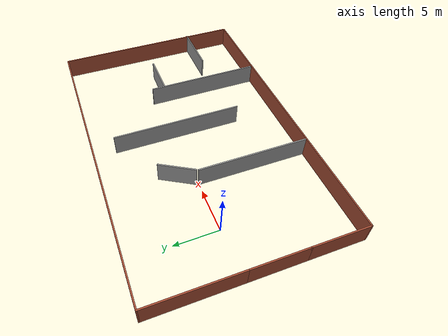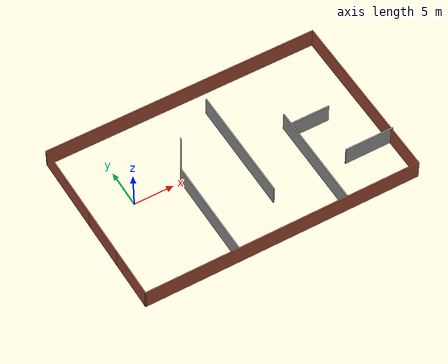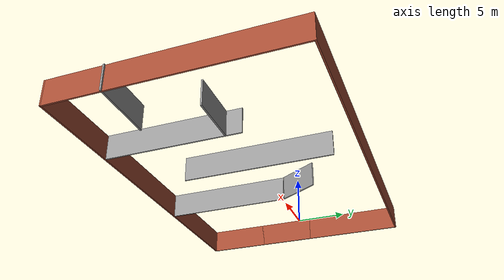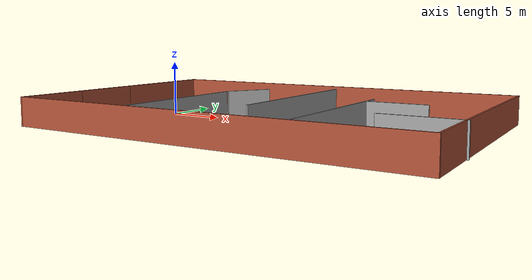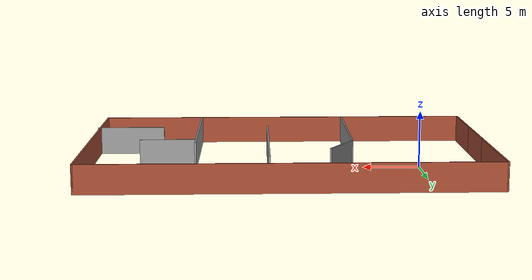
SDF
<?xml version='1.0'?>
<sdf version='1.6'>
  <model name='Untitled'>
    <pose frame=''>11.9 -1.44459 0 0 -0 0</pose>
    <link name='Wall_0'>
      <collision name='Wall_0_Collision'>
        <geometry>
          <box>
            <size>6.25 0.15 2.5</size>
          </box>
        </geometry>
        <pose frame=''>0 0 1.25 0 -0 0</pose>
      </collision>
      <visual name='Wall_0_Visual'>
        <pose frame=''>0 0 1.25 0 -0 0</pose>
        <geometry>
          <box>
            <size>6.25 0.15 2.5</size>
          </box>
        </geometry>
        <material>
          <script>
            <uri>file://media/materials/scripts/gazebo.material</uri>
            <name>Gazebo/Bricks</name>
          </script>
          <ambient>1 1 1 1</ambient>
        </material>
      </visual>
      <pose frame=''>-17.6256 -1.85 0 0 0 -1.5708</pose>
    </link>
    <link name='Wall_10'>
      <collision name='Wall_10_Collision'>
        <geometry>
          <box>
            <size>13.5 0.15 2.5</size>
          </box>
        </geometry>
        <pose frame=''>0 0 1.25 0 -0 0</pose>
      </collision>
      <visual name='Wall_10_Visual'>
        <pose frame=''>0 0 1.25 0 -0 0</pose>
        <geometry>
          <box>
            <size>13.5 0.15 2.5</size>
          </box>
        </geometry>
        <material>
          <script>
            <uri>file://media/materials/scripts/gazebo.material</uri>
            <name>Gazebo/Grey</name>
          </script>
          <ambient>0 0 0 1</ambient>
        </material>
      </visual>
      <pose frame=''>8.10218 -4.43856 0 0 0 -1.5708</pose>
    </link>
    <link name='Wall_14'>
      <collision name='Wall_14_Collision'>
        <geometry>
          <box>
            <size>12.75 0.15 2.5</size>
          </box>
        </geometry>
        <pose frame=''>0 0 1.25 0 -0 0</pose>
      </collision>
      <visual name='Wall_14_Visual'>
        <pose frame=''>0 0 1.25 0 -0 0</pose>
        <geometry>
          <box>
            <size>12.75 0.15 2.5</size>
          </box>
        </geometry>
        <material>
          <script>
            <uri>file://media/materials/scripts/gazebo.material</uri>
            <name>Gazebo/Grey</name>
          </script>
          <ambient>0 0 0 1</ambient>
        </material>
      </visual>
      <pose frame=''>-5.86198 -4.86609 0 0 0 -1.5708</pose>
    </link>
    <link name='Wall_2'>
      <collision name='Wall_2_Collision'>
        <geometry>
          <box>
            <size>10.25 0.15 2.5</size>
          </box>
        </geometry>
        <pose frame=''>0 0 1.25 0 -0 0</pose>
      </collision>
      <visual name='Wall_2_Visual'>
        <pose frame=''>0 0 1.25 0 -0 0</pose>
        <geometry>
          <box>
            <size>10.25 0.15 2.5</size>
          </box>
        </geometry>
        <material>
          <script>
            <uri>file://media/materials/scripts/gazebo.material</uri>
            <name>Gazebo/Bricks</name>
          </script>
          <ambient>1 1 1 1</ambient>
        </material>
      </visual>
      <pose frame=''>-17.6256 6.25 0 0 -0 1.5708</pose>
    </link>
    <link name='Wall_20'>
      <collision name='Wall_20_Collision'>
        <geometry>
          <box>
            <size>4.25 0.15 2.5</size>
          </box>
        </geometry>
        <pose frame=''>0 0 1.25 0 -0 0</pose>
      </collision>
      <visual name='Wall_20_Visual'>
        <pose frame=''>0 0 1.25 0 -0 0</pose>
        <geometry>
          <box>
            <size>4.25 0.15 2.5</size>
          </box>
        </geometry>
        <material>
          <script>
            <uri>file://media/materials/scripts/gazebo.material</uri>
            <name>Gazebo/Grey</name>
          </script>
          <ambient>0 0 0 1</ambient>
        </material>
      </visual>
      <pose frame=''>-4.72997 3.47677 0 0 -0 1.0472</pose>
    </link>
    <link name='Wall_22'>
      <collision name='Wall_22_Collision'>
        <geometry>
          <box>
            <size>6.25 0.15 2.5</size>
          </box>
        </geometry>
        <pose frame=''>0 0 1.25 0 -0 0</pose>
      </collision>
      <visual name='Wall_22_Visual'>
        <pose frame=''>0 0 1.25 0 -0 0</pose>
        <geometry>
          <box>
            <size>6.25 0.15 2.5</size>
          </box>
        </geometry>
        <material>
          <script>
            <uri>file://media/materials/scripts/gazebo.material</uri>
            <name>Gazebo/Grey</name>
          </script>
          <ambient>1 1 1 1</ambient>
        </material>
      </visual>
      <pose frame=''>14.5756 -5.62842 0 0 -0 3.14159</pose>
    </link>
    <link name='Wall_24'>
      <collision name='Wall_24_Collision'>
        <geometry>
          <box>
            <size>5 0.15 2.5</size>
          </box>
        </geometry>
        <pose frame=''>0 0 1.25 0 -0 0</pose>
      </collision>
      <visual name='Wall_24_Visual'>
        <pose frame=''>0 0 1.25 0 -0 0</pose>
        <geometry>
          <box>
            <size>5 0.15 2.5</size>
          </box>
        </geometry>
        <material>
          <script>
            <uri>file://media/materials/scripts/gazebo.material</uri>
            <name>Gazebo/Grey</name>
          </script>
          <ambient>1 1 1 1</ambient>
        </material>
      </visual>
      <pose frame=''>10.6342 0.738374 0 0 -0 0</pose>
    </link>
    <link name='Wall_3'>
      <collision name='Wall_3_Collision'>
        <geometry>
          <box>
            <size>35.25 0.15 2.5</size>
          </box>
        </geometry>
        <pose frame=''>0 0 1.25 0 -0 0</pose>
      </collision>
      <visual name='Wall_3_Visual'>
        <pose frame=''>0 0 1.25 0 -0 0</pose>
        <geometry>
          <box>
            <size>35.25 0.15 2.5</size>
          </box>
        </geometry>
        <material>
          <script>
            <uri>file://media/materials/scripts/gazebo.material</uri>
            <name>Gazebo/Bricks</name>
          </script>
          <ambient>1 1 1 1</ambient>
        </material>
      </visual>
      <pose frame=''>-0.07562 11.3 0 0 -0 0</pose>
    </link>
    <link name='Wall_4'>
      <collision name='Wall_4_Collision'>
        <geometry>
          <box>
            <size>22.75 0.15 2.5</size>
          </box>
        </geometry>
        <pose frame=''>0 0 1.25 0 -0 0</pose>
      </collision>
      <visual name='Wall_4_Visual'>
        <pose frame=''>0 0 1.25 0 -0 0</pose>
        <geometry>
          <box>
            <size>22.75 0.15 2.5</size>
          </box>
        </geometry>
        <material>
          <script>
            <uri>file://media/materials/scripts/gazebo.material</uri>
            <name>Gazebo/Bricks</name>
          </script>
          <ambient>1 1 1 1</ambient>
        </material>
      </visual>
      <pose frame=''>17.4744 0 0 0 0 -1.5708</pose>
    </link>
    <link name='Wall_5'>
      <collision name='Wall_5_Collision'>
        <geometry>
          <box>
            <size>35.25 0.15 2.5</size>
          </box>
        </geometry>
        <pose frame=''>0 0 1.25 0 -0 0</pose>
      </collision>
      <visual name='Wall_5_Visual'>
        <pose frame=''>0 0 1.25 0 -0 0</pose>
        <geometry>
          <box>
            <size>35.25 0.15 2.5</size>
          </box>
        </geometry>
        <material>
          <script>
            <uri>file://media/materials/scripts/gazebo.material</uri>
            <name>Gazebo/Bricks</name>
          </script>
          <ambient>1 1 1 1</ambient>
        </material>
      </visual>
      <pose frame=''>-0.07562 -11.3 0 0 -0 3.14159</pose>
    </link>
    <link name='Wall_6'>
      <collision name='Wall_6_Collision'>
        <geometry>
          <box>
            <size>6.55 0.15 2.5</size>
          </box>
        </geometry>
        <pose frame=''>0 0 1.25 0 -0 0</pose>
      </collision>
      <visual name='Wall_6_Visual'>
        <pose frame=''>0 0 1.25 0 -0 0</pose>
        <geometry>
          <box>
            <size>6.55 0.15 2.5</size>
          </box>
        </geometry>
        <material>
          <script>
            <uri>file://media/materials/scripts/gazebo.material</uri>
            <name>Gazebo/Bricks</name>
          </script>
          <ambient>1 1 1 1</ambient>
        </material>
      </visual>
      <pose frame=''>-17.6256 -8.1 0 0 -0 1.5708</pose>
    </link>
    <link name='Wall_8'>
      <collision name='Wall_8_Collision'>
        <geometry>
          <box>
            <size>15 0.15 2.5</size>
          </box>
        </geometry>
        <pose frame=''>0 0 1.25 0 -0 0</pose>
      </collision>
      <visual name='Wall_8_Visual'>
        <pose frame=''>0 0 1.25 0 -0 0</pose>
        <geometry>
          <box>
            <size>15 0.15 2.5</size>
          </box>
        </geometry>
        <material>
          <script>
            <uri>file://media/materials/scripts/gazebo.material</uri>
            <name>Gazebo/Grey</name>
          </script>
          <ambient>0 0 0 1</ambient>
        </material>
      </visual>
      <pose frame=''>1.62837 1.23174 0 0 0 -1.5708</pose>
    </link>
    <static>1</static>
  </model>
</sdf>
